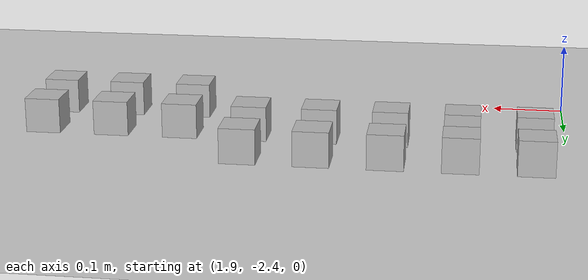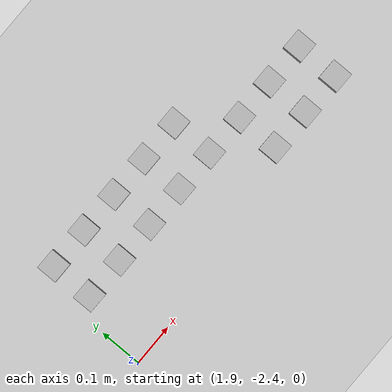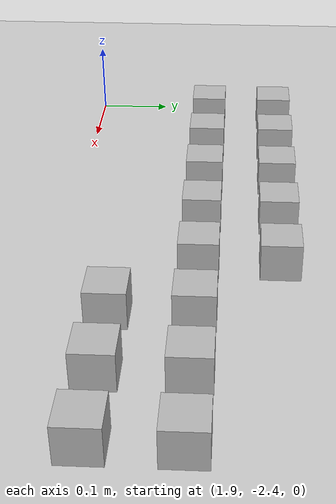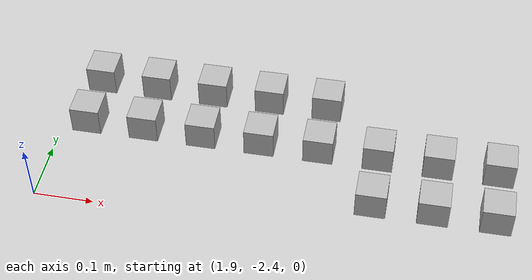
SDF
<sdf version="1.6">
 <world name="default">
  <model name="ground_plane">
   <static>1</static>
   <link name="link">
    <collision name="collision">
     <geometry><plane><normal>0 0 1</normal><size>100 100</size></plane></geometry>
     <surface><friction><ode><mu>100</mu><mu2>50</mu2></ode></friction></surface>
    </collision>
    <visual name="visual">
     <cast_shadows>0</cast_shadows>
     <geometry><plane><normal>0 0 1</normal><size>100 100</size></plane></geometry>
     <material>
      <script><uri>file://media/materials/scripts/gazebo.material</uri><name>Gazebo/Grey</name></script>
     </material>
    </visual>
   </link>
  </model>
  <model name="at13">
   <static>0</static>
   <link name="link">
    <inertial>
     <mass>0.01</mass>
     <inertia><ixx>4e-05</ixx><ixy>0</ixy><ixz>0</ixz><iyy>4e-05</iyy><iyz>0</iyz><izz>4e-05</izz></inertia>
    </inertial>
    <visual name="visual">
     <geometry><box><size>0.05 0.05 0.05</size></box></geometry>
     <material>
      <script>
       <uri>model://at0/materials/scripts</uri>
       <uri>model://at0/materials/textures</uri>
       <name>at0/Diffuse</name>
      </script>
     </material>
    </visual>
    <collision name="collision">
     <geometry><box><size>0.05 0.05 0.05</size></box></geometry>
     <surface><friction><ode><mu>0.8</mu><mu2>0.7</mu2></ode></friction></surface>
    </collision>
   </link>
   <pose>2.44532 -2.32671 0.025 0 -0 0</pose>
  </model>
  <model name="at14">
   <static>0</static>
   <link name="link">
    <inertial>
     <mass>0.01</mass>
     <inertia><ixx>4e-05</ixx><ixy>0</ixy><ixz>0</ixz><iyy>4e-05</iyy><iyz>0</iyz><izz>4e-05</izz></inertia>
    </inertial>
    <visual name="visual">
     <geometry><box><size>0.05 0.05 0.05</size></box></geometry>
     <material>
      <script>
       <uri>model://at0/materials/scripts</uri>
       <uri>model://at0/materials/textures</uri>
       <name>at0/Diffuse</name>
      </script>
     </material>
    </visual>
    <collision name="collision">
     <geometry><box><size>0.05 0.05 0.05</size></box></geometry>
     <surface><friction><ode><mu>0.8</mu><mu2>0.7</mu2></ode></friction></surface>
    </collision>
   </link>
   <pose>2.54532 -2.32671 0.025 0 -0 0</pose>
  </model>
  <model name="at15">
   <static>0</static>
   <link name="link">
    <inertial>
     <mass>0.01</mass>
     <inertia><ixx>4e-05</ixx><ixy>0</ixy><ixz>0</ixz><iyy>4e-05</iyy><iyz>0</iyz><izz>4e-05</izz></inertia>
    </inertial>
    <visual name="visual">
     <geometry><box><size>0.05 0.05 0.05</size></box></geometry>
     <material>
      <script>
       <uri>model://at0/materials/scripts</uri>
       <uri>model://at0/materials/textures</uri>
       <name>at0/Diffuse</name>
      </script>
     </material>
    </visual>
    <collision name="collision">
     <geometry><box><size>0.05 0.05 0.05</size></box></geometry>
     <surface><friction><ode><mu>0.8</mu><mu2>0.7</mu2></ode></friction></surface>
    </collision>
   </link>
   <pose>2.64532 -2.32671 0.025 0 -0 0</pose>
  </model>
  <model name="at16">
   <static>0</static>
   <link name="link">
    <inertial>
     <mass>0.01</mass>
     <inertia><ixx>4e-05</ixx><ixy>0</ixy><ixz>0</ixz><iyy>4e-05</iyy><iyz>0</iyz><izz>4e-05</izz></inertia>
    </inertial>
    <visual name="visual">
     <geometry><box><size>0.05 0.05 0.05</size></box></geometry>
     <material>
      <script>
       <uri>model://at0/materials/scripts</uri>
       <uri>model://at0/materials/textures</uri>
       <name>at0/Diffuse</name>
      </script>
     </material>
    </visual>
    <collision name="collision">
     <geometry><box><size>0.05 0.05 0.05</size></box></geometry>
     <surface><friction><ode><mu>0.8</mu><mu2>0.7</mu2></ode></friction></surface>
    </collision>
   </link>
   <pose>1.94532 -2.22671 0.025 0 -0 0</pose>
  </model>
  <model name="at17">
   <static>0</static>
   <link name="link">
    <inertial>
     <mass>0.01</mass>
     <inertia><ixx>4e-05</ixx><ixy>0</ixy><ixz>0</ixz><iyy>4e-05</iyy><iyz>0</iyz><izz>4e-05</izz></inertia>
    </inertial>
    <visual name="visual">
     <geometry><box><size>0.05 0.05 0.05</size></box></geometry>
     <material>
      <script>
       <uri>model://at0/materials/scripts</uri>
       <uri>model://at0/materials/textures</uri>
       <name>at0/Diffuse</name>
      </script>
     </material>
    </visual>
    <collision name="collision">
     <geometry><box><size>0.05 0.05 0.05</size></box></geometry>
     <surface><friction><ode><mu>0.8</mu><mu2>0.7</mu2></ode></friction></surface>
    </collision>
   </link>
   <pose>2.04532 -2.22671 0.025 0 -0 0</pose>
  </model>
  <model name="at18">
   <static>0</static>
   <link name="link">
    <inertial>
     <mass>0.01</mass>
     <inertia><ixx>4e-05</ixx><ixy>0</ixy><ixz>0</ixz><iyy>4e-05</iyy><iyz>0</iyz><izz>4e-05</izz></inertia>
    </inertial>
    <visual name="visual">
     <geometry><box><size>0.05 0.05 0.05</size></box></geometry>
     <material>
      <script>
       <uri>model://at0/materials/scripts</uri>
       <uri>model://at0/materials/textures</uri>
       <name>at0/Diffuse</name>
      </script>
     </material>
    </visual>
    <collision name="collision">
     <geometry><box><size>0.05 0.05 0.05</size></box></geometry>
     <surface><friction><ode><mu>0.8</mu><mu2>0.7</mu2></ode></friction></surface>
    </collision>
   </link>
   <pose>2.14532 -2.22671 0.025 0 -0 0</pose>
  </model>
  <model name="at19">
   <static>0</static>
   <link name="link">
    <inertial>
     <mass>0.01</mass>
     <inertia><ixx>4e-05</ixx><ixy>0</ixy><ixz>0</ixz><iyy>4e-05</iyy><iyz>0</iyz><izz>4e-05</izz></inertia>
    </inertial>
    <visual name="visual">
     <geometry><box><size>0.05 0.05 0.05</size></box></geometry>
     <material>
      <script>
       <uri>model://at0/materials/scripts</uri>
       <uri>model://at0/materials/textures</uri>
       <name>at0/Diffuse</name>
      </script>
     </material>
    </visual>
    <collision name="collision">
     <geometry><box><size>0.05 0.05 0.05</size></box></geometry>
     <surface><friction><ode><mu>0.8</mu><mu2>0.7</mu2></ode></friction></surface>
    </collision>
   </link>
   <pose>2.24532 -2.22671 0.025 0 -0 0</pose>
  </model>
  <model name="at20">
   <static>0</static>
   <link name="link">
    <inertial>
     <mass>0.01</mass>
     <inertia><ixx>4e-05</ixx><ixy>0</ixy><ixz>0</ixz><iyy>4e-05</iyy><iyz>0</iyz><izz>4e-05</izz></inertia>
    </inertial>
    <visual name="visual">
     <geometry><box><size>0.05 0.05 0.05</size></box></geometry>
     <material>
      <script>
       <uri>model://at0/materials/scripts</uri>
       <uri>model://at0/materials/textures</uri>
       <name>at0/Diffuse</name>
      </script>
     </material>
    </visual>
    <collision name="collision">
     <geometry><box><size>0.05 0.05 0.05</size></box></geometry>
     <surface><friction><ode><mu>0.8</mu><mu2>0.7</mu2></ode></friction></surface>
    </collision>
   </link>
   <pose>2.34532 -2.22671 0.025 0 -0 0</pose>
  </model>
  <model name="at21">
   <static>0</static>
   <link name="link">
    <inertial>
     <mass>0.01</mass>
     <inertia><ixx>4e-05</ixx><ixy>0</ixy><ixz>0</ixz><iyy>4e-05</iyy><iyz>0</iyz><izz>4e-05</izz></inertia>
    </inertial>
    <visual name="visual">
     <geometry><box><size>0.05 0.05 0.05</size></box></geometry>
     <material>
      <script>
       <uri>model://at0/materials/scripts</uri>
       <uri>model://at0/materials/textures</uri>
       <name>at0/Diffuse</name>
      </script>
     </material>
    </visual>
    <collision name="collision">
     <geometry><box><size>0.05 0.05 0.05</size></box></geometry>
     <surface><friction><ode><mu>0.8</mu><mu2>0.7</mu2></ode></friction></surface>
    </collision>
   </link>
   <pose>2.44532 -2.22671 0.025 0 -0 0</pose>
  </model>
  <model name="at22">
   <static>0</static>
   <link name="link">
    <inertial>
     <mass>0.01</mass>
     <inertia><ixx>4e-05</ixx><ixy>0</ixy><ixz>0</ixz><iyy>4e-05</iyy><iyz>0</iyz><izz>4e-05</izz></inertia>
    </inertial>
    <visual name="visual">
     <geometry><box><size>0.05 0.05 0.05</size></box></geometry>
     <material>
      <script>
       <uri>model://at0/materials/scripts</uri>
       <uri>model://at0/materials/textures</uri>
       <name>at0/Diffuse</name>
      </script>
     </material>
    </visual>
    <collision name="collision">
     <geometry><box><size>0.05 0.05 0.05</size></box></geometry>
     <surface><friction><ode><mu>0.8</mu><mu2>0.7</mu2></ode></friction></surface>
    </collision>
   </link>
   <pose>2.54532 -2.22671 0.025 0 -0 0</pose>
  </model>
  <model name="at23">
   <static>0</static>
   <link name="link">
    <inertial>
     <mass>0.01</mass>
     <inertia><ixx>4e-05</ixx><ixy>0</ixy><ixz>0</ixz><iyy>4e-05</iyy><iyz>0</iyz><izz>4e-05</izz></inertia>
    </inertial>
    <visual name="visual">
     <geometry><box><size>0.05 0.05 0.05</size></box></geometry>
     <material>
      <script>
       <uri>model://at0/materials/scripts</uri>
       <uri>model://at0/materials/textures</uri>
       <name>at0/Diffuse</name>
      </script>
     </material>
    </visual>
    <collision name="collision">
     <geometry><box><size>0.05 0.05 0.05</size></box></geometry>
     <surface><friction><ode><mu>0.8</mu><mu2>0.7</mu2></ode></friction></surface>
    </collision>
   </link>
   <pose>2.64532 -2.22671 0.025 0 -0 0</pose>
  </model>
  <model name="at24">
   <static>0</static>
   <link name="link">
    <inertial>
     <mass>0.01</mass>
     <inertia><ixx>4e-05</ixx><ixy>0</ixy><ixz>0</ixz><iyy>4e-05</iyy><iyz>0</iyz><izz>4e-05</izz></inertia>
    </inertial>
    <visual name="visual">
     <geometry><box><size>0.05 0.05 0.05</size></box></geometry>
     <material>
      <script>
       <uri>model://at0/materials/scripts</uri>
       <uri>model://at0/materials/textures</uri>
       <name>at0/Diffuse</name>
      </script>
     </material>
    </visual>
    <collision name="collision">
     <geometry><box><size>0.05 0.05 0.05</size></box></geometry>
     <surface><friction><ode><mu>0.8</mu><mu2>0.7</mu2></ode></friction></surface>
    </collision>
   </link>
   <pose>1.94532 -2.12671 0.025 0 -0 0</pose>
  </model>
  <model name="at25">
   <static>0</static>
   <link name="link">
    <inertial>
     <mass>0.01</mass>
     <inertia><ixx>4e-05</ixx><ixy>0</ixy><ixz>0</ixz><iyy>4e-05</iyy><iyz>0</iyz><izz>4e-05</izz></inertia>
    </inertial>
    <visual name="visual">
     <geometry><box><size>0.05 0.05 0.05</size></box></geometry>
     <material>
      <script>
       <uri>model://at0/materials/scripts</uri>
       <uri>model://at0/materials/textures</uri>
       <name>at0/Diffuse</name>
      </script>
     </material>
    </visual>
    <collision name="collision">
     <geometry><box><size>0.05 0.05 0.05</size></box></geometry>
     <surface><friction><ode><mu>0.8</mu><mu2>0.7</mu2></ode></friction></surface>
    </collision>
   </link>
   <pose>2.04532 -2.12671 0.025 0 -0 0</pose>
  </model>
  <model name="at26">
   <static>0</static>
   <link name="link">
    <inertial>
     <mass>0.01</mass>
     <inertia><ixx>4e-05</ixx><ixy>0</ixy><ixz>0</ixz><iyy>4e-05</iyy><iyz>0</iyz><izz>4e-05</izz></inertia>
    </inertial>
    <visual name="visual">
     <geometry><box><size>0.05 0.05 0.05</size></box></geometry>
     <material>
      <script>
       <uri>model://at0/materials/scripts</uri>
       <uri>model://at0/materials/textures</uri>
       <name>at0/Diffuse</name>
      </script>
     </material>
    </visual>
    <collision name="collision">
     <geometry><box><size>0.05 0.05 0.05</size></box></geometry>
     <surface><friction><ode><mu>0.8</mu><mu2>0.7</mu2></ode></friction></surface>
    </collision>
   </link>
   <pose>2.14532 -2.12671 0.025 0 -0 0</pose>
  </model>
  <model name="at27">
   <static>0</static>
   <link name="link">
    <inertial>
     <mass>0.01</mass>
     <inertia><ixx>4e-05</ixx><ixy>0</ixy><ixz>0</ixz><iyy>4e-05</iyy><iyz>0</iyz><izz>4e-05</izz></inertia>
    </inertial>
    <visual name="visual">
     <geometry><box><size>0.05 0.05 0.05</size></box></geometry>
     <material>
      <script>
       <uri>model://at0/materials/scripts</uri>
       <uri>model://at0/materials/textures</uri>
       <name>at0/Diffuse</name>
      </script>
     </material>
    </visual>
    <collision name="collision">
     <geometry><box><size>0.05 0.05 0.05</size></box></geometry>
     <surface><friction><ode><mu>0.8</mu><mu2>0.7</mu2></ode></friction></surface>
    </collision>
   </link>
   <pose>2.24532 -2.12671 0.025 0 -0 0</pose>
  </model>
  <model name="at28">
   <static>0</static>
   <link name="link">
    <inertial>
     <mass>0.01</mass>
     <inertia><ixx>4e-05</ixx><ixy>0</ixy><ixz>0</ixz><iyy>4e-05</iyy><iyz>0</iyz><izz>4e-05</izz></inertia>
    </inertial>
    <visual name="visual">
     <geometry><box><size>0.05 0.05 0.05</size></box></geometry>
     <material>
      <script>
       <uri>model://at0/materials/scripts</uri>
       <uri>model://at0/materials/textures</uri>
       <name>at0/Diffuse</name>
      </script>
     </material>
    </visual>
    <collision name="collision">
     <geometry><box><size>0.05 0.05 0.05</size></box></geometry>
     <surface><friction><ode><mu>0.8</mu><mu2>0.7</mu2></ode></friction></surface>
    </collision>
   </link>
   <pose>2.34532 -2.12671 0.025 0 -0 0</pose>
  </model>
 </world>
</sdf>
